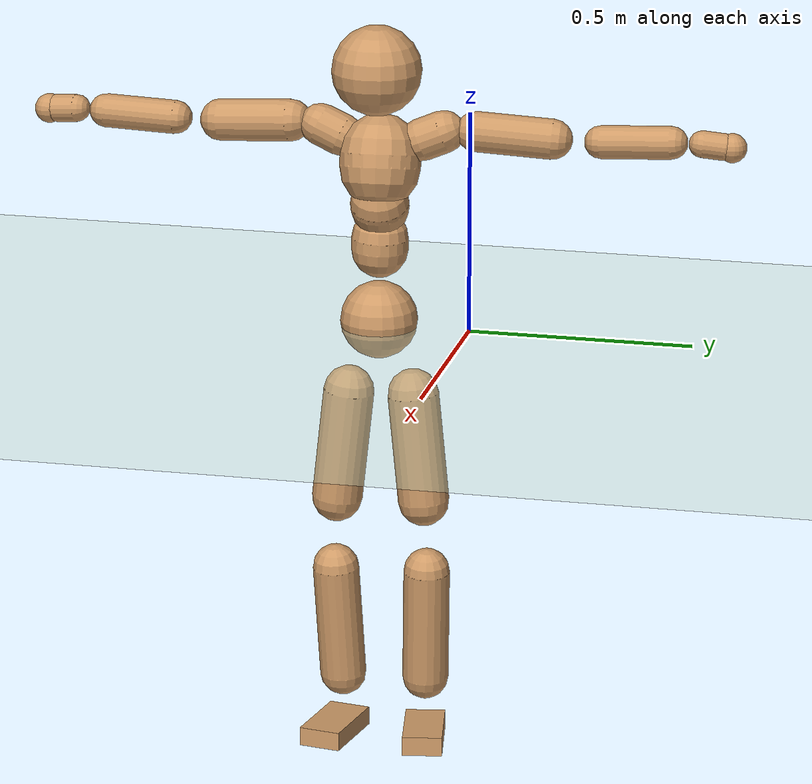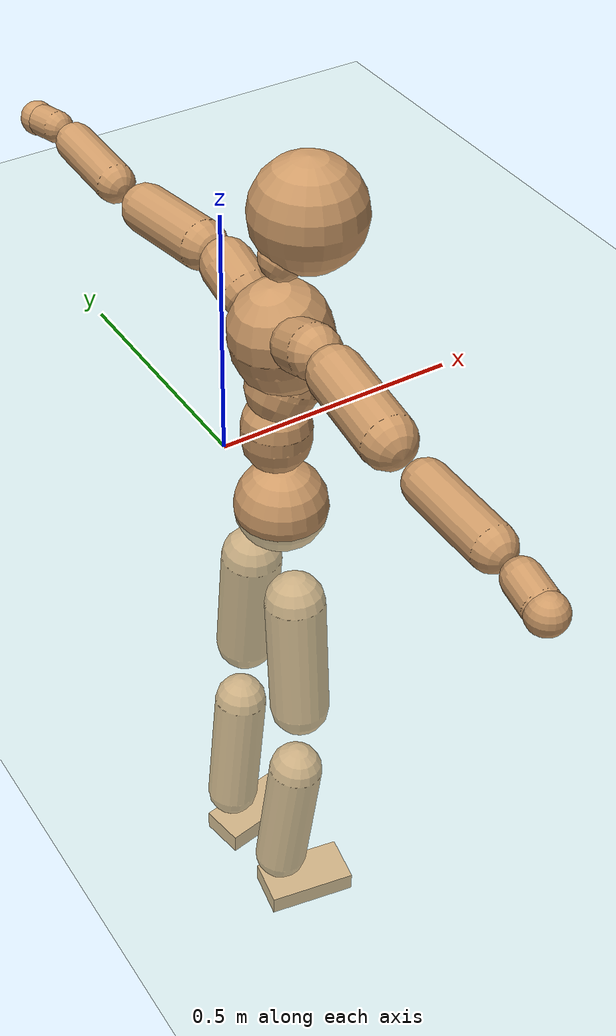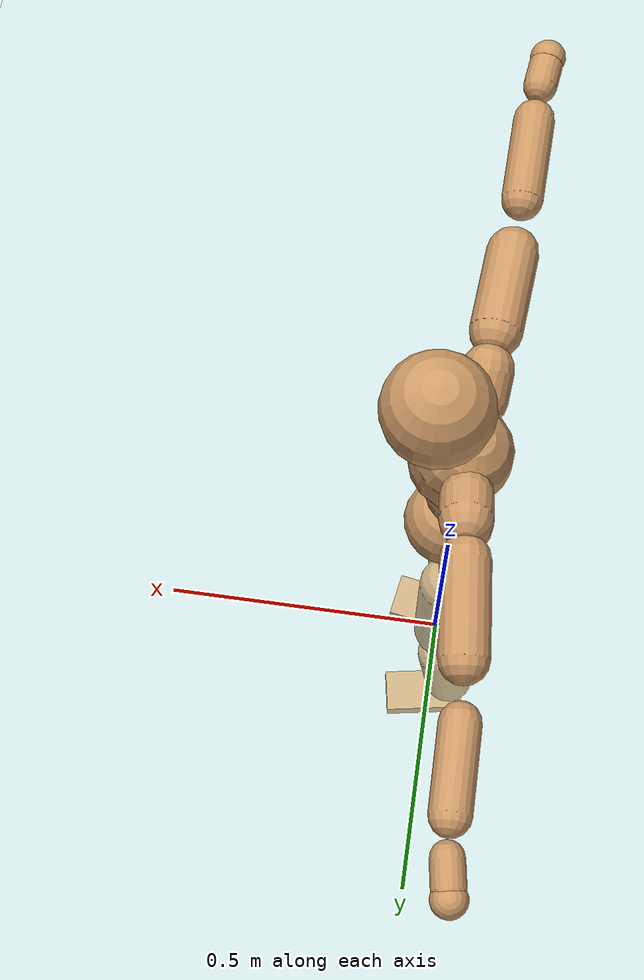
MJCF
<mujoco model="humanoid">
  <compiler coordinate="local" angle="radian"/>
  <default>
    <joint damping="0.0" armature="0.01" stiffness="0.0" limited="true"/>
    <geom conaffinity="1" condim="3" contype="7" margin="0.001" rgba="0.8 0.6 .4 1"/>
  </default>
  <asset>
    <texture type="skybox" builtin="gradient" rgb1=".4 .5 .6" rgb2="0 0 0" width="100" height="100"/>
    <texture builtin="flat" height="1278" mark="cross" markrgb="1 1 1" name="texgeom" random="0.01" rgb1="0.8 0.6 0.4" rgb2="0.8 0.6 0.4" type="cube" width="127"/>
    <texture builtin="checker" height="100" name="texplane" rgb1="0 0 0" rgb2="0.8 0.8 0.8" type="2d" width="100"/>
    <material name="MatPlane" reflectance="0.5" shininess="1" specular="1" texrepeat="60 60" texture="texplane"/>
    <material name="geom" texture="texgeom" texuniform="true"/>
  </asset>
  <worldbody>
    <light cutoff="100" diffuse="1 1 1" dir="-0 0 -1.3" directional="true" exponent="1" pos="0 0 1.3" specular=".1 .1 .1"/>
    <geom conaffinity="1" condim="3" name="floor" pos="0 0 0" rgba="0.8 0.9 0.8 1" size="100 100 .2" type="plane" material="MatPlane"/>
    <body name="Pelvis" pos="-0.0011 -0.2066 0.0135">
      <freejoint name="Pelvis"/>
      <geom type="sphere" contype="1" conaffinity="1" density="500" size="0.0869" pos="0.0000 0.0000 0.0000" name="Pelvis"/>
      <body name="L_Hip" pos="-0.0174 0.0662 -0.0923">
        <joint name="L_Hip_x" type="hinge" pos="0 0 0" axis="1 0 0" stiffness="800" damping="80" armature="0.02" range="-180.0000 180.0000"/>
        <joint name="L_Hip_y" type="hinge" pos="0 0 0" axis="0 1 0" stiffness="800" damping="80" armature="0.02" range="-180.0000 180.0000"/>
        <joint name="L_Hip_z" type="hinge" pos="0 0 0" axis="0 0 1" stiffness="800" damping="80" armature="0.02" range="-180.0000 180.0000"/>
        <geom type="capsule" contype="1" conaffinity="1" density="500" fromto="-0.0001 0.0081 -0.0836 -0.0002 0.0326 -0.3342" size="0.0577" name="L_Hip"/>
        <body name="L_Knee" pos="-0.0003 0.0407 -0.4178">
          <joint name="L_Knee_x" type="hinge" pos="0 0 0" axis="1 0 0" stiffness="800" damping="80" armature="0.02" range="-180.0000 180.0000"/>
          <joint name="L_Knee_y" type="hinge" pos="0 0 0" axis="0 1 0" stiffness="800" damping="80" armature="0.02" range="-180.0000 180.0000"/>
          <joint name="L_Knee_z" type="hinge" pos="0 0 0" axis="0 0 1" stiffness="800" damping="80" armature="0.02" range="-180.0000 180.0000"/>
          <geom type="capsule" contype="1" conaffinity="1" density="500" fromto="-0.0089 -0.0027 -0.0884 -0.0355 -0.0108 -0.3536" size="0.0523" name="L_Knee"/>
          <body name="L_Ankle" pos="-0.0443 -0.0135 -0.4421">
            <joint name="L_Ankle_x" type="hinge" pos="0 0 0" axis="1 0 0" stiffness="800" damping="80" armature="0.02" range="-180.0000 180.0000"/>
            <joint name="L_Ankle_y" type="hinge" pos="0 0 0" axis="0 1 0" stiffness="800" damping="80" armature="0.02" range="-180.0000 180.0000"/>
            <joint name="L_Ankle_z" type="hinge" pos="0 0 0" axis="0 0 1" stiffness="800" damping="80" armature="0.02" range="-180.0000 180.0000"/>
            <geom type="box" contype="1" conaffinity="1" density="500" pos="0.0618 0.0107 -0.0307" size="0.0866 0.0452 0.022" quat="0.9963 0.0000 0.0000 0.0855" name="L_Ankle"/>
            <body name="L_Toe" pos="0.1237 0.0214 -0.0614">
              <joint name="L_Toe_x" type="hinge" pos="0 0 0" axis="1 0 0" stiffness="500" damping="50" armature="0.02" range="-180.0000 180.0000"/>
              <joint name="L_Toe_y" type="hinge" pos="0 0 0" axis="0 1 0" stiffness="500" damping="50" armature="0.02" range="-180.0000 180.0000"/>
              <joint name="L_Toe_z" type="hinge" pos="0 0 0" axis="0 0 1" stiffness="500" damping="50" armature="0.02" range="-180.0000 180.0000"/>
              <geom type="box" contype="1" conaffinity="1" density="500" pos="0.0000 0.0000 0.0304" size="0.0009 0.0023 0.0011" quat="0.9958 0.0000 0.0000 0.0919" name="L_Toe"/>
            </body>
          </body>
        </body>
      </body>
      <body name="R_Hip" pos="-0.0125 -0.0634 -0.0908">
        <joint name="R_Hip_x" type="hinge" pos="0 0 0" axis="1 0 0" stiffness="800" damping="80" armature="0.02" range="-180.0000 180.0000"/>
        <joint name="R_Hip_y" type="hinge" pos="0 0 0" axis="0 1 0" stiffness="800" damping="80" armature="0.02" range="-180.0000 180.0000"/>
        <joint name="R_Hip_z" type="hinge" pos="0 0 0" axis="0 0 1" stiffness="800" damping="80" armature="0.02" range="-180.0000 180.0000"/>
        <geom type="capsule" contype="1" conaffinity="1" density="500" fromto="-0.0008 -0.0094 -0.0850 -0.0031 -0.0375 -0.3399" size="0.0569" name="R_Hip"/>
        <body name="R_Knee" pos="-0.0039 -0.0469 -0.4249">
          <joint name="R_Knee_x" type="hinge" pos="0 0 0" axis="1 0 0" stiffness="800" damping="80" armature="0.02" range="-180.0000 180.0000"/>
          <joint name="R_Knee_y" type="hinge" pos="0 0 0" axis="0 1 0" stiffness="800" damping="80" armature="0.02" range="-180.0000 180.0000"/>
          <joint name="R_Knee_z" type="hinge" pos="0 0 0" axis="0 0 1" stiffness="800" damping="80" armature="0.02" range="-180.0000 180.0000"/>
          <geom type="capsule" contype="1" conaffinity="1" density="500" fromto="-0.0084 0.0035 -0.0883 -0.0334 0.0140 -0.3530" size="0.0526" name="R_Knee"/>
          <body name="R_Ankle" pos="-0.0418 0.0175 -0.4413">
            <joint name="R_Ankle_x" type="hinge" pos="0 0 0" axis="1 0 0" stiffness="800" damping="80" armature="0.02" range="-180.0000 180.0000"/>
            <joint name="R_Ankle_y" type="hinge" pos="0 0 0" axis="0 1 0" stiffness="800" damping="80" armature="0.02" range="-180.0000 180.0000"/>
            <joint name="R_Ankle_z" type="hinge" pos="0 0 0" axis="0 0 1" stiffness="800" damping="80" armature="0.02" range="-180.0000 180.0000"/>
            <geom type="box" contype="1" conaffinity="1" density="500" pos="0.0636 -0.0110 -0.0256" size="0.0889 0.0478 0.0213" quat="0.9963 0.0000 0.0000 -0.0859" name="R_Ankle"/>
            <body name="R_Toe" pos="0.1272 -0.0221 -0.0513">
              <joint name="R_Toe_x" type="hinge" pos="0 0 0" axis="1 0 0" stiffness="500" damping="50" armature="0.02" range="-180.0000 180.0000"/>
              <joint name="R_Toe_y" type="hinge" pos="0 0 0" axis="0 1 0" stiffness="500" damping="50" armature="0.02" range="-180.0000 180.0000"/>
              <joint name="R_Toe_z" type="hinge" pos="0 0 0" axis="0 0 1" stiffness="500" damping="50" armature="0.02" range="-180.0000 180.0000"/>
              <geom type="box" contype="1" conaffinity="1" density="500" pos="0.0000 0.0000 0.0286" size="0.0008 0.0023 0.0012" quat="0.9970 0.0000 0.0000 -0.0771" name="R_Toe"/>
            </body>
          </body>
        </body>
      </body>
      <body name="Torso" pos="-0.0132 -0.0032 0.105">
        <joint name="Torso_x" type="hinge" pos="0 0 0" axis="1 0 0" stiffness="1000" damping="100" armature="0.02" range="-180.0000 180.0000"/>
        <joint name="Torso_y" type="hinge" pos="0 0 0" axis="0 1 0" stiffness="1000" damping="100" armature="0.02" range="-180.0000 180.0000"/>
        <joint name="Torso_z" type="hinge" pos="0 0 0" axis="0 0 1" stiffness="1000" damping="100" armature="0.02" range="-180.0000 180.0000"/>
        <geom type="capsule" contype="1" conaffinity="1" density="500" fromto="0.0014 0.0027 0.0812 0.0009 0.0018 0.0542" size="0.0636" name="Torso"/>
        <body name="Spine" pos="0.0024 0.0045 0.1354">
          <joint name="Spine_x" type="hinge" pos="0 0 0" axis="1 0 0" stiffness="1000" damping="100" armature="0.02" range="-180.0000 180.0000"/>
          <joint name="Spine_y" type="hinge" pos="0 0 0" axis="0 1 0" stiffness="1000" damping="100" armature="0.02" range="-180.0000 180.0000"/>
          <joint name="Spine_z" type="hinge" pos="0 0 0" axis="0 0 1" stiffness="1000" damping="100" armature="0.02" range="-180.0000 180.0000"/>
          <geom type="capsule" contype="1" conaffinity="1" density="500" fromto="0.0154 0.0011 0.0310 0.0103 0.0007 0.0207" size="0.0656" name="Spine"/>
          <body name="Chest" pos="0.0256 0.0018 0.0517">
            <joint name="Chest_x" type="hinge" pos="0 0 0" axis="1 0 0" stiffness="1000" damping="100" armature="0.02" range="-180.0000 180.0000"/>
            <joint name="Chest_y" type="hinge" pos="0 0 0" axis="0 1 0" stiffness="1000" damping="100" armature="0.02" range="-180.0000 180.0000"/>
            <joint name="Chest_z" type="hinge" pos="0 0 0" axis="0 0 1" stiffness="1000" damping="100" armature="0.02" range="-180.0000 180.0000"/>
            <geom type="capsule" contype="1" conaffinity="1" density="500" fromto="-0.0212 -0.0012 0.0881 -0.0142 -0.0008 0.0587" size="0.0904" name="Chest"/>
            <body name="Neck" pos="-0.0317 -0.0039 0.2132">
              <joint name="Neck_x" type="hinge" pos="0 0 0" axis="1 0 0" stiffness="500" damping="50" armature="0.02" range="-180.0000 180.0000"/>
              <joint name="Neck_y" type="hinge" pos="0 0 0" axis="0 1 0" stiffness="500" damping="50" armature="0.02" range="-180.0000 180.0000"/>
              <joint name="Neck_z" type="hinge" pos="0 0 0" axis="0 0 1" stiffness="500" damping="50" armature="0.02" range="-180.0000 180.0000"/>
              <geom type="capsule" contype="1" conaffinity="1" density="500" fromto="0.0127 0.0013 0.0155 0.0507 0.0052 0.0621" size="0.0405" name="Neck"/>
              <body name="Head" pos="0.0634 0.0066 0.0776">
                <joint name="Head_x" type="hinge" pos="0 0 0" axis="1 0 0" stiffness="500" damping="50" armature="0.02" range="-180.0000 180.0000"/>
                <joint name="Head_y" type="hinge" pos="0 0 0" axis="0 1 0" stiffness="500" damping="50" armature="0.02" range="-180.0000 180.0000"/>
                <joint name="Head_z" type="hinge" pos="0 0 0" axis="0 0 1" stiffness="500" damping="50" armature="0.02" range="-180.0000 180.0000"/>
                <geom type="sphere" contype="1" conaffinity="1" density="500" size="0.1001" pos="0.0000 0.0000 0.0000" name="Head"/>
              </body>
            </body>
            <body name="L_Thorax" pos="-0.0349 0.0721 0.1147">
              <joint name="L_Thorax_x" type="hinge" pos="0 0 0" axis="1 0 0" stiffness="500" damping="50" armature="0.02" range="-180.0000 180.0000"/>
              <joint name="L_Thorax_y" type="hinge" pos="0 0 0" axis="0 1 0" stiffness="500" damping="50" armature="0.02" range="-180.0000 180.0000"/>
              <joint name="L_Thorax_z" type="hinge" pos="0 0 0" axis="0 0 1" stiffness="500" damping="50" armature="0.02" range="-180.0000 180.0000"/>
              <geom type="capsule" contype="1" conaffinity="1" density="500" fromto="-0.0011 0.0163 0.0067 -0.0044 0.0651 0.0270" size="0.0478" name="L_Thorax"/>
              <body name="L_Shoulder" pos="-0.0055 0.0814 0.0337">
                <joint name="L_Shoulder_x" type="hinge" pos="0 0 0" axis="1 0 0" stiffness="500" damping="50" armature="0.02" range="-720.0000 720.0000"/>
                <joint name="L_Shoulder_y" type="hinge" pos="0 0 0" axis="0 1 0" stiffness="500" damping="50" armature="0.02" range="-720.0000 720.0000"/>
                <joint name="L_Shoulder_z" type="hinge" pos="0 0 0" axis="0 0 1" stiffness="500" damping="50" armature="0.02" range="-720.0000 720.0000"/>
                <geom type="capsule" contype="1" conaffinity="1" density="500" fromto="-0.0058 0.0557 -0.0039 -0.0231 0.2228 -0.0158" size="0.0453" name="L_Shoulder"/>
                <body name="L_Elbow" pos="-0.0288 0.2785 -0.0197">
                  <joint name="L_Elbow_x" type="hinge" pos="0 0 0" axis="1 0 0" stiffness="500" damping="50" armature="0.02" range="-720.0000 720.0000"/>
                  <joint name="L_Elbow_y" type="hinge" pos="0 0 0" axis="0 1 0" stiffness="500" damping="50" armature="0.02" range="-720.0000 720.0000"/>
                  <joint name="L_Elbow_z" type="hinge" pos="0 0 0" axis="0 0 1" stiffness="500" damping="50" armature="0.02" range="-720.0000 720.0000"/>
                  <geom type="capsule" contype="1" conaffinity="1" density="500" fromto="-0.0005 0.0519 0.0023 -0.0019 0.2076 0.0094" size="0.0369" name="L_Elbow"/>
                  <body name="L_Wrist" pos="-0.0024 0.2595 0.0117">
                    <joint name="L_Wrist_x" type="hinge" pos="0 0 0" axis="1 0 0" stiffness="300" damping="30" armature="0.02" range="-180.0000 180.0000"/>
                    <joint name="L_Wrist_y" type="hinge" pos="0 0 0" axis="0 1 0" stiffness="300" damping="30" armature="0.02" range="-180.0000 180.0000"/>
                    <joint name="L_Wrist_z" type="hinge" pos="0 0 0" axis="0 0 1" stiffness="300" damping="30" armature="0.02" range="-180.0000 180.0000"/>
                    <geom type="capsule" contype="1" conaffinity="1" density="500" fromto="-0.0028 0.0162 -0.0020 -0.0110 0.0647 -0.0080" size="0.03" name="L_Wrist"/>
                    <body name="L_Hand" pos="-0.0138 0.0809 -0.01">
                      <joint name="L_Hand_x" type="hinge" pos="0 0 0" axis="1 0 0" stiffness="300" damping="30" armature="0.02" range="-180.0000 180.0000"/>
                      <joint name="L_Hand_y" type="hinge" pos="0 0 0" axis="0 1 0" stiffness="300" damping="30" armature="0.02" range="-180.0000 180.0000"/>
                      <joint name="L_Hand_z" type="hinge" pos="0 0 0" axis="0 0 1" stiffness="300" damping="30" armature="0.02" range="-180.0000 180.0000"/>
                      <geom type="sphere" contype="1" conaffinity="1" density="500" size="0.0324" pos="0.0000 0.0000 0.0000" name="L_Hand"/>
                    </body>
                  </body>
                </body>
              </body>
            </body>
            <body name="R_Thorax" pos="-0.0395 -0.0744 0.1126">
              <joint name="R_Thorax_x" type="hinge" pos="0 0 0" axis="1 0 0" stiffness="500" damping="50" armature="0.02" range="-180.0000 180.0000"/>
              <joint name="R_Thorax_y" type="hinge" pos="0 0 0" axis="0 1 0" stiffness="500" damping="50" armature="0.02" range="-180.0000 180.0000"/>
              <joint name="R_Thorax_z" type="hinge" pos="0 0 0" axis="0 0 1" stiffness="500" damping="50" armature="0.02" range="-180.0000 180.0000"/>
              <geom type="capsule" contype="1" conaffinity="1" density="500" fromto="-0.0015 -0.0170 0.0071 -0.0059 -0.0678 0.0284" size="0.0468" name="R_Thorax"/>
              <body name="R_Shoulder" pos="-0.0074 -0.0848 0.0355">
                <joint name="R_Shoulder_x" type="hinge" pos="0 0 0" axis="1 0 0" stiffness="500" damping="50" armature="0.02" range="-720.0000 720.0000"/>
                <joint name="R_Shoulder_y" type="hinge" pos="0 0 0" axis="0 1 0" stiffness="500" damping="50" armature="0.02" range="-720.0000 720.0000"/>
                <joint name="R_Shoulder_z" type="hinge" pos="0 0 0" axis="0 0 1" stiffness="500" damping="50" armature="0.02" range="-720.0000 720.0000"/>
                <geom type="capsule" contype="1" conaffinity="1" density="500" fromto="-0.0043 -0.0538 -0.0038 -0.0173 -0.2150 -0.0153" size="0.0475" name="R_Shoulder"/>
                <body name="R_Elbow" pos="-0.0217 -0.2688 -0.0191">
                  <joint name="R_Elbow_x" type="hinge" pos="0 0 0" axis="1 0 0" stiffness="500" damping="50" armature="0.02" range="-720.0000 720.0000"/>
                  <joint name="R_Elbow_y" type="hinge" pos="0 0 0" axis="0 1 0" stiffness="500" damping="50" armature="0.02" range="-720.0000 720.0000"/>
                  <joint name="R_Elbow_z" type="hinge" pos="0 0 0" axis="0 0 1" stiffness="500" damping="50" armature="0.02" range="-720.0000 720.0000"/>
                  <geom type="capsule" contype="1" conaffinity="1" density="500" fromto="-0.0015 -0.0539 0.0017 -0.0059 -0.2155 0.0067" size="0.0377" name="R_Elbow"/>
                  <body name="R_Wrist" pos="-0.0074 -0.2693 0.0084">
                    <joint name="R_Wrist_x" type="hinge" pos="0 0 0" axis="1 0 0" stiffness="300" damping="30" armature="0.02" range="-180.0000 180.0000"/>
                    <joint name="R_Wrist_y" type="hinge" pos="0 0 0" axis="0 1 0" stiffness="300" damping="30" armature="0.02" range="-180.0000 180.0000"/>
                    <joint name="R_Wrist_z" type="hinge" pos="0 0 0" axis="0 0 1" stiffness="300" damping="30" armature="0.02" range="-180.0000 180.0000"/>
                    <geom type="capsule" contype="1" conaffinity="1" density="500" fromto="-0.0021 -0.0165 -0.0015 -0.0084 -0.0658 -0.0060" size="0.031" name="R_Wrist"/>
                    <body name="R_Hand" pos="-0.0106 -0.0823 -0.0075">
                      <joint name="R_Hand_x" type="hinge" pos="0 0 0" axis="1 0 0" stiffness="300" damping="30" armature="0.02" range="-180.0000 180.0000"/>
                      <joint name="R_Hand_y" type="hinge" pos="0 0 0" axis="0 1 0" stiffness="300" damping="30" armature="0.02" range="-180.0000 180.0000"/>
                      <joint name="R_Hand_z" type="hinge" pos="0 0 0" axis="0 0 1" stiffness="300" damping="30" armature="0.02" range="-180.0000 180.0000"/>
                      <geom type="sphere" contype="1" conaffinity="1" density="500" size="0.0329" pos="0.0000 0.0000 0.0000" name="R_Hand"/>
                    </body>
                  </body>
                </body>
              </body>
            </body>
          </body>
        </body>
      </body>
    </body>
  </worldbody>
  <actuator>
    <motor name="L_Hip_x" joint="L_Hip_x" gear="500"/>
    <motor name="L_Hip_y" joint="L_Hip_y" gear="500"/>
    <motor name="L_Hip_z" joint="L_Hip_z" gear="500"/>
    <motor name="L_Knee_x" joint="L_Knee_x" gear="500"/>
    <motor name="L_Knee_y" joint="L_Knee_y" gear="500"/>
    <motor name="L_Knee_z" joint="L_Knee_z" gear="500"/>
    <motor name="L_Ankle_x" joint="L_Ankle_x" gear="500"/>
    <motor name="L_Ankle_y" joint="L_Ankle_y" gear="500"/>
    <motor name="L_Ankle_z" joint="L_Ankle_z" gear="500"/>
    <motor name="L_Toe_x" joint="L_Toe_x" gear="500"/>
    <motor name="L_Toe_y" joint="L_Toe_y" gear="500"/>
    <motor name="L_Toe_z" joint="L_Toe_z" gear="500"/>
    <motor name="R_Hip_x" joint="R_Hip_x" gear="500"/>
    <motor name="R_Hip_y" joint="R_Hip_y" gear="500"/>
    <motor name="R_Hip_z" joint="R_Hip_z" gear="500"/>
    <motor name="R_Knee_x" joint="R_Knee_x" gear="500"/>
    <motor name="R_Knee_y" joint="R_Knee_y" gear="500"/>
    <motor name="R_Knee_z" joint="R_Knee_z" gear="500"/>
    <motor name="R_Ankle_x" joint="R_Ankle_x" gear="500"/>
    <motor name="R_Ankle_y" joint="R_Ankle_y" gear="500"/>
    <motor name="R_Ankle_z" joint="R_Ankle_z" gear="500"/>
    <motor name="R_Toe_x" joint="R_Toe_x" gear="500"/>
    <motor name="R_Toe_y" joint="R_Toe_y" gear="500"/>
    <motor name="R_Toe_z" joint="R_Toe_z" gear="500"/>
    <motor name="Torso_x" joint="Torso_x" gear="500"/>
    <motor name="Torso_y" joint="Torso_y" gear="500"/>
    <motor name="Torso_z" joint="Torso_z" gear="500"/>
    <motor name="Spine_x" joint="Spine_x" gear="500"/>
    <motor name="Spine_y" joint="Spine_y" gear="500"/>
    <motor name="Spine_z" joint="Spine_z" gear="500"/>
    <motor name="Chest_x" joint="Chest_x" gear="500"/>
    <motor name="Chest_y" joint="Chest_y" gear="500"/>
    <motor name="Chest_z" joint="Chest_z" gear="500"/>
    <motor name="Neck_x" joint="Neck_x" gear="500"/>
    <motor name="Neck_y" joint="Neck_y" gear="500"/>
    <motor name="Neck_z" joint="Neck_z" gear="500"/>
    <motor name="Head_x" joint="Head_x" gear="500"/>
    <motor name="Head_y" joint="Head_y" gear="500"/>
    <motor name="Head_z" joint="Head_z" gear="500"/>
    <motor name="L_Thorax_x" joint="L_Thorax_x" gear="500"/>
    <motor name="L_Thorax_y" joint="L_Thorax_y" gear="500"/>
    <motor name="L_Thorax_z" joint="L_Thorax_z" gear="500"/>
    <motor name="L_Shoulder_x" joint="L_Shoulder_x" gear="500"/>
    <motor name="L_Shoulder_y" joint="L_Shoulder_y" gear="500"/>
    <motor name="L_Shoulder_z" joint="L_Shoulder_z" gear="500"/>
    <motor name="L_Elbow_x" joint="L_Elbow_x" gear="500"/>
    <motor name="L_Elbow_y" joint="L_Elbow_y" gear="500"/>
    <motor name="L_Elbow_z" joint="L_Elbow_z" gear="500"/>
    <motor name="L_Wrist_x" joint="L_Wrist_x" gear="500"/>
    <motor name="L_Wrist_y" joint="L_Wrist_y" gear="500"/>
    <motor name="L_Wrist_z" joint="L_Wrist_z" gear="500"/>
    <motor name="L_Hand_x" joint="L_Hand_x" gear="500"/>
    <motor name="L_Hand_y" joint="L_Hand_y" gear="500"/>
    <motor name="L_Hand_z" joint="L_Hand_z" gear="500"/>
    <motor name="R_Thorax_x" joint="R_Thorax_x" gear="500"/>
    <motor name="R_Thorax_y" joint="R_Thorax_y" gear="500"/>
    <motor name="R_Thorax_z" joint="R_Thorax_z" gear="500"/>
    <motor name="R_Shoulder_x" joint="R_Shoulder_x" gear="500"/>
    <motor name="R_Shoulder_y" joint="R_Shoulder_y" gear="500"/>
    <motor name="R_Shoulder_z" joint="R_Shoulder_z" gear="500"/>
    <motor name="R_Elbow_x" joint="R_Elbow_x" gear="500"/>
    <motor name="R_Elbow_y" joint="R_Elbow_y" gear="500"/>
    <motor name="R_Elbow_z" joint="R_Elbow_z" gear="500"/>
    <motor name="R_Wrist_x" joint="R_Wrist_x" gear="500"/>
    <motor name="R_Wrist_y" joint="R_Wrist_y" gear="500"/>
    <motor name="R_Wrist_z" joint="R_Wrist_z" gear="500"/>
    <motor name="R_Hand_x" joint="R_Hand_x" gear="500"/>
    <motor name="R_Hand_y" joint="R_Hand_y" gear="500"/>
    <motor name="R_Hand_z" joint="R_Hand_z" gear="500"/>
  </actuator>
  <contact>
    <exclude body1="Torso" body2="Chest"/>
    <exclude body1="Head" body2="Chest"/>
    <exclude body1="R_Knee" body2="R_Toe"/>
    <exclude body1="R_Knee" body2="L_Ankle"/>
    <exclude body1="R_Knee" body2="L_Toe"/>
    <exclude body1="L_Knee" body2="L_Toe"/>
    <exclude body1="L_Knee" body2="R_Ankle"/>
    <exclude body1="L_Knee" body2="R_Toe"/>
    <exclude body1="L_Shoulder" body2="Chest"/>
    <exclude body1="R_Shoulder" body2="Chest"/>
  </contact>
  <sensor/>
  <size njmax="700" nconmax="700"/>
</mujoco>
